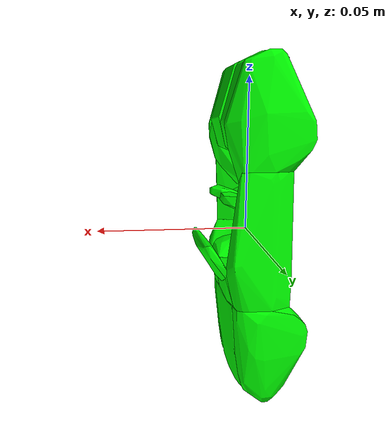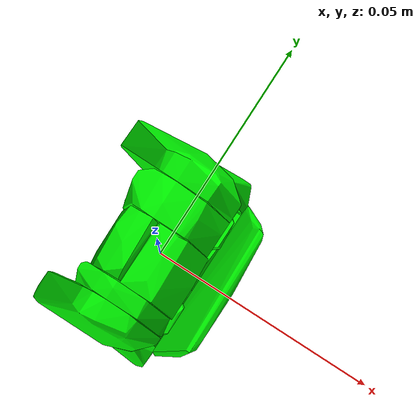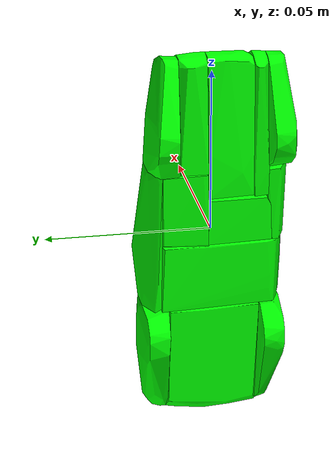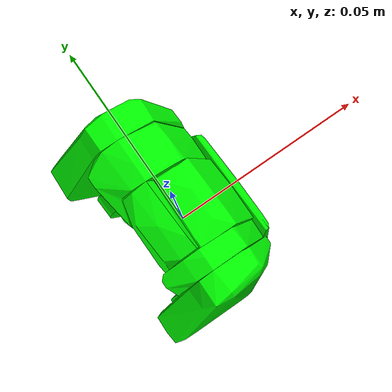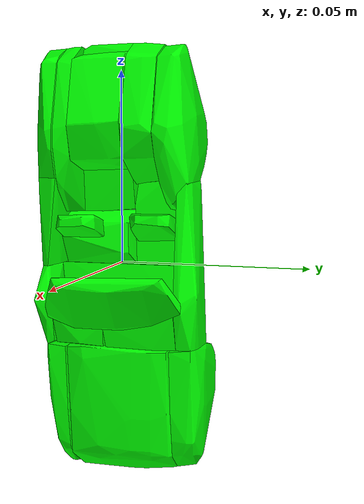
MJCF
<mujoco model="obj1">
  <asset>
    <mesh file="meshes/obj1/obj1_0.stl" name="obj1_0"/>
    <mesh file="meshes/obj1/obj1_1.stl" name="obj1_1"/>
    <mesh file="meshes/obj1/obj1_2.stl" name="obj1_2"/>
    <mesh file="meshes/obj1/obj1_3.stl" name="obj1_3"/>
    <mesh file="meshes/obj1/obj1_4.stl" name="obj1_4"/>
    <mesh file="meshes/obj1/obj1_5.stl" name="obj1_5"/>
    <mesh file="meshes/obj1/obj1_6.stl" name="obj1_6"/>
    <mesh file="meshes/obj1/obj1_7.stl" name="obj1_7"/>
    <mesh file="meshes/obj1/obj1_8.stl" name="obj1_8"/>
    <mesh file="meshes/obj1/obj1_9.stl" name="obj1_9"/>
    <mesh file="meshes/obj1/obj1_10.stl" name="obj1_10"/>
    <mesh file="meshes/obj1/obj1_11.stl" name="obj1_11"/>
    <mesh file="meshes/obj1/obj1_12.stl" name="obj1_12"/>
    <mesh file="meshes/obj1/obj1_13.stl" name="obj1_13"/>
    <mesh file="meshes/obj1/obj1_14.stl" name="obj1_14"/>
    <mesh file="meshes/obj1/obj1_15.stl" name="obj1_15"/>
    <mesh file="meshes/obj1/obj1_16.stl" name="obj1_16"/>
    <mesh file="meshes/obj1/obj1_17.stl" name="obj1_17"/>
    <mesh file="meshes/obj1/obj1_18.stl" name="obj1_18"/>
    <mesh file="meshes/obj1/obj1_19.stl" name="obj1_19"/>
  </asset>
  <worldbody>
    <body>
      <body name="collision">
        <geom condim="4" density="100" friction="0.95 0.3 0.1" group="1" mesh="obj1_0" pos="0 0 0" rgba="0 1 0 1" solimp="0.998 0.998 0.001" solref="0.001 1" type="mesh"/>
        <geom condim="4" density="100" friction="0.95 0.3 0.1" group="1" mesh="obj1_1" pos="0 0 0" rgba="0 1 0 1" solimp="0.998 0.998 0.001" solref="0.001 1" type="mesh"/>
        <geom condim="4" density="100" friction="0.95 0.3 0.1" group="1" mesh="obj1_2" pos="0 0 0" rgba="0 1 0 1" solimp="0.998 0.998 0.001" solref="0.001 1" type="mesh"/>
        <geom condim="4" density="100" friction="0.95 0.3 0.1" group="1" mesh="obj1_3" pos="0 0 0" rgba="0 1 0 1" solimp="0.998 0.998 0.001" solref="0.001 1" type="mesh"/>
        <geom condim="4" density="100" friction="0.95 0.3 0.1" group="1" mesh="obj1_4" pos="0 0 0" rgba="0 1 0 1" solimp="0.998 0.998 0.001" solref="0.001 1" type="mesh"/>
        <geom condim="4" density="100" friction="0.95 0.3 0.1" group="1" mesh="obj1_5" pos="0 0 0" rgba="0 1 0 1" solimp="0.998 0.998 0.001" solref="0.001 1" type="mesh"/>
        <geom condim="4" density="100" friction="0.95 0.3 0.1" group="1" mesh="obj1_6" pos="0 0 0" rgba="0 1 0 1" solimp="0.998 0.998 0.001" solref="0.001 1" type="mesh"/>
        <geom condim="4" density="100" friction="0.95 0.3 0.1" group="1" mesh="obj1_7" pos="0 0 0" rgba="0 1 0 1" solimp="0.998 0.998 0.001" solref="0.001 1" type="mesh"/>
        <geom condim="4" density="100" friction="0.95 0.3 0.1" group="1" mesh="obj1_8" pos="0 0 0" rgba="0 1 0 1" solimp="0.998 0.998 0.001" solref="0.001 1" type="mesh"/>
        <geom condim="4" density="100" friction="0.95 0.3 0.1" group="1" mesh="obj1_9" pos="0 0 0" rgba="0 1 0 1" solimp="0.998 0.998 0.001" solref="0.001 1" type="mesh"/>
        <geom condim="4" density="100" friction="0.95 0.3 0.1" group="1" mesh="obj1_10" pos="0 0 0" rgba="0 1 0 1" solimp="0.998 0.998 0.001" solref="0.001 1" type="mesh"/>
        <geom condim="4" density="100" friction="0.95 0.3 0.1" group="1" mesh="obj1_11" pos="0 0 0" rgba="0 1 0 1" solimp="0.998 0.998 0.001" solref="0.001 1" type="mesh"/>
        <geom condim="4" density="100" friction="0.95 0.3 0.1" group="1" mesh="obj1_12" pos="0 0 0" rgba="0 1 0 1" solimp="0.998 0.998 0.001" solref="0.001 1" type="mesh"/>
        <geom condim="4" density="100" friction="0.95 0.3 0.1" group="1" mesh="obj1_13" pos="0 0 0" rgba="0 1 0 1" solimp="0.998 0.998 0.001" solref="0.001 1" type="mesh"/>
        <geom condim="4" density="100" friction="0.95 0.3 0.1" group="1" mesh="obj1_14" pos="0 0 0" rgba="0 1 0 1" solimp="0.998 0.998 0.001" solref="0.001 1" type="mesh"/>
        <geom condim="4" density="100" friction="0.95 0.3 0.1" group="1" mesh="obj1_15" pos="0 0 0" rgba="0 1 0 1" solimp="0.998 0.998 0.001" solref="0.001 1" type="mesh"/>
        <geom condim="4" density="100" friction="0.95 0.3 0.1" group="1" mesh="obj1_16" pos="0 0 0" rgba="0 1 0 1" solimp="0.998 0.998 0.001" solref="0.001 1" type="mesh"/>
        <geom condim="4" density="100" friction="0.95 0.3 0.1" group="1" mesh="obj1_17" pos="0 0 0" rgba="0 1 0 1" solimp="0.998 0.998 0.001" solref="0.001 1" type="mesh"/>
        <geom condim="4" density="100" friction="0.95 0.3 0.1" group="1" mesh="obj1_18" pos="0 0 0" rgba="0 1 0 1" solimp="0.998 0.998 0.001" solref="0.001 1" type="mesh"/>
        <geom condim="4" density="100" friction="0.95 0.3 0.1" group="1" mesh="obj1_19" pos="0 0 0" rgba="0 1 0 1" solimp="0.998 0.998 0.001" solref="0.001 1" type="mesh"/>
      </body>
      <body name="visual">
        <geom conaffinity="0" contype="0" group="0" mass="0.0001" mesh="obj1_0" pos="0 0 0" rgba="0 1 0 1" type="mesh"/>
        <geom conaffinity="0" contype="0" group="0" mass="0.0001" mesh="obj1_1" pos="0 0 0" rgba="0 1 0 1" type="mesh"/>
        <geom conaffinity="0" contype="0" group="0" mass="0.0001" mesh="obj1_2" pos="0 0 0" rgba="0 1 0 1" type="mesh"/>
        <geom conaffinity="0" contype="0" group="0" mass="0.0001" mesh="obj1_3" pos="0 0 0" rgba="0 1 0 1" type="mesh"/>
        <geom conaffinity="0" contype="0" group="0" mass="0.0001" mesh="obj1_4" pos="0 0 0" rgba="0 1 0 1" type="mesh"/>
        <geom conaffinity="0" contype="0" group="0" mass="0.0001" mesh="obj1_5" pos="0 0 0" rgba="0 1 0 1" type="mesh"/>
        <geom conaffinity="0" contype="0" group="0" mass="0.0001" mesh="obj1_6" pos="0 0 0" rgba="0 1 0 1" type="mesh"/>
        <geom conaffinity="0" contype="0" group="0" mass="0.0001" mesh="obj1_7" pos="0 0 0" rgba="0 1 0 1" type="mesh"/>
        <geom conaffinity="0" contype="0" group="0" mass="0.0001" mesh="obj1_8" pos="0 0 0" rgba="0 1 0 1" type="mesh"/>
        <geom conaffinity="0" contype="0" group="0" mass="0.0001" mesh="obj1_9" pos="0 0 0" rgba="0 1 0 1" type="mesh"/>
        <geom conaffinity="0" contype="0" group="0" mass="0.0001" mesh="obj1_10" pos="0 0 0" rgba="0 1 0 1" type="mesh"/>
        <geom conaffinity="0" contype="0" group="0" mass="0.0001" mesh="obj1_11" pos="0 0 0" rgba="0 1 0 1" type="mesh"/>
        <geom conaffinity="0" contype="0" group="0" mass="0.0001" mesh="obj1_12" pos="0 0 0" rgba="0 1 0 1" type="mesh"/>
        <geom conaffinity="0" contype="0" group="0" mass="0.0001" mesh="obj1_13" pos="0 0 0" rgba="0 1 0 1" type="mesh"/>
        <geom conaffinity="0" contype="0" group="0" mass="0.0001" mesh="obj1_14" pos="0 0 0" rgba="0 1 0 1" type="mesh"/>
        <geom conaffinity="0" contype="0" group="0" mass="0.0001" mesh="obj1_15" pos="0 0 0" rgba="0 1 0 1" type="mesh"/>
        <geom conaffinity="0" contype="0" group="0" mass="0.0001" mesh="obj1_16" pos="0 0 0" rgba="0 1 0 1" type="mesh"/>
        <geom conaffinity="0" contype="0" group="0" mass="0.0001" mesh="obj1_17" pos="0 0 0" rgba="0 1 0 1" type="mesh"/>
        <geom conaffinity="0" contype="0" group="0" mass="0.0001" mesh="obj1_18" pos="0 0 0" rgba="0 1 0 1" type="mesh"/>
        <geom conaffinity="0" contype="0" group="0" mass="0.0001" mesh="obj1_19" pos="0 0 0" rgba="0 1 0 1" type="mesh"/>
      </body>
      <site name="bottom_site" pos="0 0 -0.06" rgba="0 0 0 0" size="0.005"/>
      <site name="top_site" pos="0 0 0.04" rgba="0 0 0 0" size="0.005"/>
      <site name="horizontal_radius_site" pos="0.025 0.025 0" rgba="0 0 0 0" size="0.005"/>
    </body>
  </worldbody>
</mujoco>
